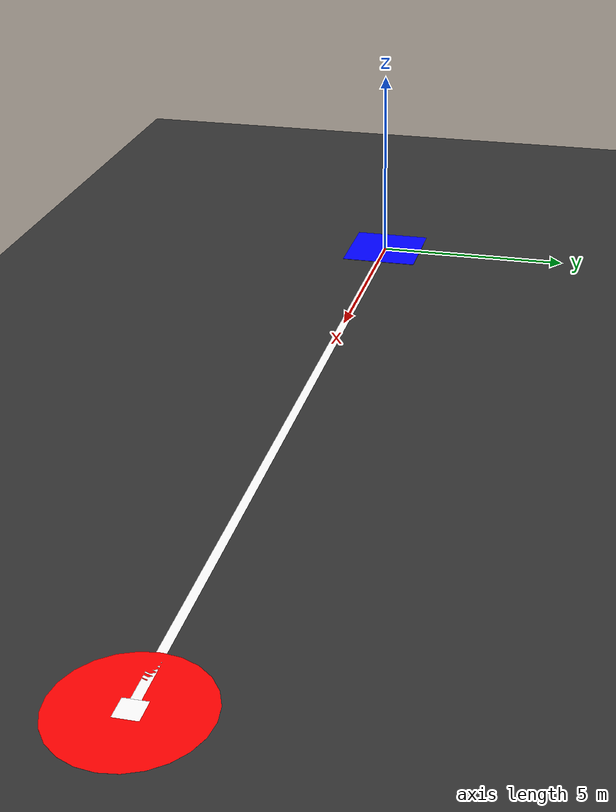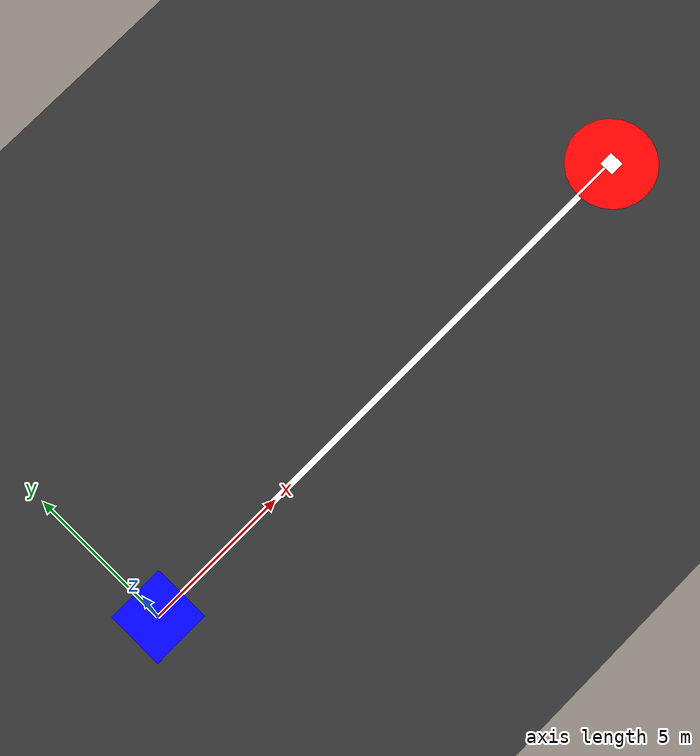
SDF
<sdf version="1.9">
 <world name="landing_target_80mm">
  <physics name="1ms" type="ignored">
   <max_step_size>0.001</max_step_size>
   <real_time_factor>1.0</real_time_factor>
  </physics>
  <plugin name="gz::sim::systems::Physics" filename="gz-sim-physics-system"/>
  <plugin name="gz::sim::systems::UserCommands" filename="gz-sim-user-commands-system"/>
  <plugin name="gz::sim::systems::SceneBroadcaster" filename="gz-sim-scene-broadcaster-system"/>
  <plugin name="gz::sim::systems::Sensors" filename="gz-sim-sensors-system">
   <render_engine>ogre2</render_engine>
  </plugin>
  <plugin name="gz::sim::systems::Imu" filename="gz-sim-imu-system"/>
  <light type="directional" name="sun">
   <pose>0 0 10 0 0 0</pose>
   <diffuse>0.8 0.8 0.8 1</diffuse>
   <specular>0.2 0.2 0.2 1</specular>
   <direction>-0.5 0.1 -0.9</direction>
  </light>
  <model name="ground_plane">
   <static>true</static>
   <link name="link">
    <collision name="collision">
     <geometry><plane><normal>0 0 1</normal><size>100 100</size></plane></geometry>
    </collision>
    <visual name="visual">
     <geometry><plane><normal>0 0 1</normal><size>100 100</size></plane></geometry>
     <material><ambient>0.2 0.2 0.2 1</ambient><diffuse>0.2 0.2 0.2 1</diffuse></material>
    </visual>
   </link>
  </model>
  <model name="guidance_line">
   <static>true</static>
   <pose>10 0 0.01 0 0 0</pose>
   <link name="link">
    <visual name="visual">
     <geometry><box><size>20 0.2 0.001</size></box></geometry>
     <material><ambient>1 1 1 1</ambient><diffuse>1 1 1 1</diffuse></material>
    </visual>
   </link>
  </model>
  <model name="landing_pad">
   <static>true</static>
   <pose>20 0 0.01 0 0 0</pose>
   <link name="link">
    <visual name="visual">
     <geometry><cylinder><radius>1.5</radius><length>0.001</length></cylinder></geometry>
     <material><ambient>1 0 0 1</ambient><diffuse>1 0 0 1</diffuse></material>
    </visual>
    <visual name="center_mark">
     <pose>0 0 0.002 0 0 0</pose>
     <geometry><box><size>0.5 0.5 0.001</size></box></geometry>
     <material><ambient>1 1 1 1</ambient><diffuse>1 1 1 1</diffuse></material>
    </visual>
   </link>
  </model>
  <model name="start_platform">
   <static>true</static>
   <pose>0 0 0.01 0 0 0</pose>
   <link name="link">
    <visual name="visual">
     <geometry><box><size>2 2 0.01</size></box></geometry>
     <material><ambient>0 0 1 1</ambient><diffuse>0 0 1 1</diffuse></material>
    </visual>
   </link>
  </model>
 </world>
</sdf>
